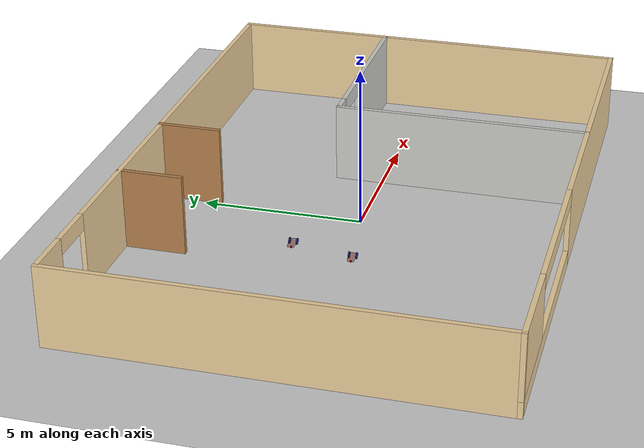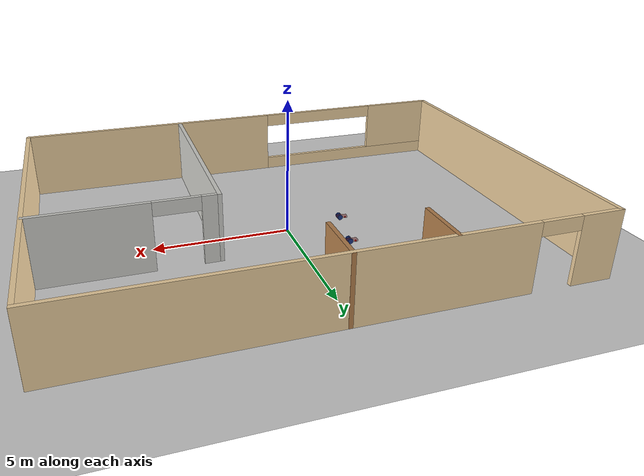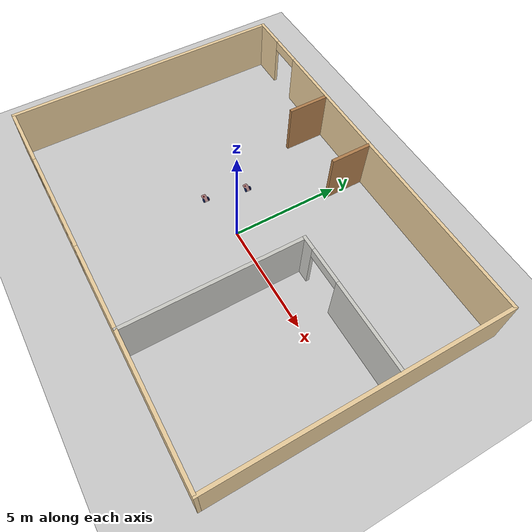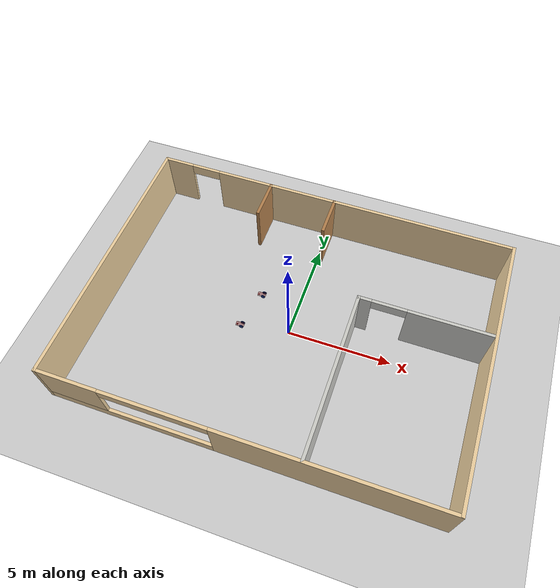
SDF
<sdf version="1.6">
 <world name="default">
  <plugin name="hello" filename="libhello.so"/>
  <light name="sun" type="directional">
   <pose>0 0 10 0 -0 0</pose>
   <diffuse>0.8 0.8 0.8 1</diffuse>
   <specular>0.2 0.2 0.2 1</specular>
   <attenuation>
    <range>1000</range>
    <constant>0.9</constant>
    <linear>0.01</linear>
    <quadratic>0.001</quadratic>
   </attenuation>
   <direction>-0.5 0.1 -0.9</direction>
  </light>
  <model name="ground_plane">
   <static>1</static>
   <link name="link">
    <collision name="collision">
     <geometry><plane><normal>0 0 1</normal><size>100 100</size></plane></geometry>
     <surface>
      <contact><collide_bitmask>65535</collide_bitmask></contact>
      <friction><ode><mu>100</mu><mu2>50</mu2></ode></friction>
     </surface>
    </collision>
    <visual name="visual">
     <cast_shadows>0</cast_shadows>
     <geometry><plane><normal>0 0 1</normal><size>100 100</size></plane></geometry>
     <material>
      <script><uri>file://media/materials/scripts/gazebo.material</uri><name>Gazebo/Grey</name></script>
     </material>
    </visual>
   </link>
  </model>
  <gravity>0 0 -9.8</gravity>
  <magnetic_field>6e-06 2.3e-05 -4.2e-05</magnetic_field>
  <atmosphere type="adiabatic"/>
  <physics name="default_physics" default="0" type="ode">
   <max_step_size>0.001</max_step_size>
   <real_time_factor>1</real_time_factor>
   <real_time_update_rate>1000</real_time_update_rate>
  </physics>
  <scene><ambient>0.4 0.4 0.4 1</ambient><background>0.7 0.7 0.7 1</background><shadows>1</shadows></scene>
  <audio><device>default</device></audio>
  <spherical_coordinates>
   <surface_model>EARTH_WGS84</surface_model>
   <latitude_deg>0</latitude_deg>
   <longitude_deg>0</longitude_deg>
   <elevation>0</elevation>
   <heading_deg>0</heading_deg>
  </spherical_coordinates>
  <model name="myapartment">
   <pose>0.04372 -0.00253 0 0 -0 0</pose>
   <link name="Wall_13">
    <collision name="Wall_13_Collision">
     <geometry><box><size>8 0.15 2.5</size></box></geometry>
     <pose>0 0 1.25 0 -0 0</pose>
    </collision>
    <visual name="Wall_13_Visual">
     <pose>0 0 1.25 0 -0 0</pose>
     <geometry><box><size>8 0.15 2.5</size></box></geometry>
     <material>
      <script><uri>file://media/materials/scripts/gazebo.material</uri><name>Gazebo/CeilingTiled</name></script>
      <ambient>0 0.666667 1 1</ambient>
     </material>
     <meta><layer>0</layer></meta>
    </visual>
    <pose>2.77622 -2.48679 0 0 -0 1.5708</pose>
   </link>
   <link name="Wall_14">
    <pose>5.82622 1.43821 0 0 -0 0</pose>
    <visual name="Wall_14_Visual_0">
     <pose>-2.78661 0 1.25 0 -0 0</pose>
     <geometry><box><size>0.676771 0.15 2.5</size></box></geometry>
     <material>
      <script><uri>file://media/materials/scripts/gazebo.material</uri><name>Gazebo/CeilingTiled</name></script>
      <ambient>0 0.666667 1 1</ambient>
     </material>
     <meta><layer>0</layer></meta>
    </visual>
    <collision name="Wall_14_Collision_0">
     <geometry><box><size>0.676771 0.15 2.5</size></box></geometry>
     <pose>-2.78661 0 1.25 0 -0 0</pose>
    </collision>
    <visual name="Wall_14_Visual_1">
     <pose>1.14693 0 1.25 0 -0 0</pose>
     <geometry><box><size>3.95614 0.15 2.5</size></box></geometry>
     <material>
      <script><uri>file://media/materials/scripts/gazebo.material</uri><name>Gazebo/CeilingTiled</name></script>
      <ambient>0 0.666667 1 1</ambient>
     </material>
     <meta><layer>0</layer></meta>
    </visual>
    <collision name="Wall_14_Collision_1">
     <geometry><box><size>3.95614 0.15 2.5</size></box></geometry>
     <pose>1.14693 0 1.25 0 -0 0</pose>
    </collision>
    <visual name="Wall_14_Visual_2">
     <pose>-1.63968 0 2.25 0 -0 0</pose>
     <geometry><box><size>1.61709 0.15 0.5</size></box></geometry>
     <material>
      <script><uri>file://media/materials/scripts/gazebo.material</uri><name>Gazebo/CeilingTiled</name></script>
      <ambient>0 0.666667 1 1</ambient>
     </material>
     <meta><layer>0</layer></meta>
    </visual>
    <collision name="Wall_14_Collision_2">
     <geometry><box><size>1.61709 0.15 0.5</size></box></geometry>
     <pose>-1.63968 0 2.25 0 -0 0</pose>
    </collision>
   </link>
   <link name="Wall_2">
    <pose>0 6.42373 0 0 -0 0</pose>
    <visual name="Wall_2_Visual_0">
     <pose>-8.23049 0 1.25 0 -0 0</pose>
     <geometry><box><size>1.53902 0.15 2.5</size></box></geometry>
     <material>
      <script><uri>file://media/materials/scripts/gazebo.material</uri><name>Gazebo/Grey</name></script>
      <ambient>0.921569 0.807843 0.615686 1</ambient>
     </material>
     <meta><layer>0</layer></meta>
    </visual>
    <collision name="Wall_2_Collision_0">
     <geometry><box><size>1.53902 0.15 2.5</size></box></geometry>
     <pose>-8.23049 0 1.25 0 -0 0</pose>
    </collision>
    <visual name="Wall_2_Visual_1">
     <pose>1.49935 0 1.25 0 -0 0</pose>
     <geometry><box><size>15.0013 0.15 2.5</size></box></geometry>
     <material>
      <script><uri>file://media/materials/scripts/gazebo.material</uri><name>Gazebo/Grey</name></script>
      <ambient>0.921569 0.807843 0.615686 1</ambient>
     </material>
     <meta><layer>0</layer></meta>
    </visual>
    <collision name="Wall_2_Collision_1">
     <geometry><box><size>15.0013 0.15 2.5</size></box></geometry>
     <pose>1.49935 0 1.25 0 -0 0</pose>
    </collision>
    <visual name="Wall_2_Visual_2">
     <pose>-6.73114 0 2.25 0 -0 0</pose>
     <geometry><box><size>1.45968 0.15 0.5</size></box></geometry>
     <material>
      <script><uri>file://media/materials/scripts/gazebo.material</uri><name>Gazebo/Grey</name></script>
      <ambient>0.921569 0.807843 0.615686 1</ambient>
     </material>
     <meta><layer>0</layer></meta>
    </visual>
    <collision name="Wall_2_Collision_2">
     <geometry><box><size>1.45968 0.15 0.5</size></box></geometry>
     <pose>-6.73114 0 2.25 0 -0 0</pose>
    </collision>
   </link>
   <link name="Wall_20">
    <collision name="Wall_20_Collision">
     <geometry><box><size>2 0.15 2.5</size></box></geometry>
     <pose>0 0 1.25 0 -0 0</pose>
    </collision>
    <visual name="Wall_20_Visual">
     <pose>0 0 1.25 0 -0 0</pose>
     <geometry><box><size>2 0.15 2.5</size></box></geometry>
     <material>
      <script><uri>file://media/materials/scripts/gazebo.material</uri><name>Gazebo/Wood</name></script>
      <ambient>0 0.666667 1 1</ambient>
     </material>
     <meta><layer>0</layer></meta>
    </visual>
    <pose>0.133709 5.50127 0 0 -0 -1.5708</pose>
   </link>
   <link name="Wall_22">
    <collision name="Wall_22_Collision">
     <geometry><box><size>2 0.15 2.5</size></box></geometry>
     <pose>0 0 1.25 0 -0 0</pose>
    </collision>
    <visual name="Wall_22_Visual">
     <pose>0 0 1.25 0 -0 0</pose>
     <geometry><box><size>2 0.15 2.5</size></box></geometry>
     <material>
      <script><uri>file://media/materials/scripts/gazebo.material</uri><name>Gazebo/Wood</name></script>
      <ambient>0 0.666667 1 1</ambient>
     </material>
     <meta><layer>0</layer></meta>
    </visual>
    <pose>-3.1894 5.49654 0 0 -0 -1.5708</pose>
   </link>
   <link name="Wall_6">
    <collision name="Wall_6_Collision">
     <geometry><box><size>13 0.15 2.5</size></box></geometry>
     <pose>0 0 1.25 0 -0 0</pose>
    </collision>
    <visual name="Wall_6_Visual">
     <pose>0 0 1.25 0 -0 0</pose>
     <geometry><box><size>13 0.15 2.5</size></box></geometry>
     <material>
      <script><uri>file://media/materials/scripts/gazebo.material</uri><name>Gazebo/Grey</name></script>
      <ambient>0.921569 0.807843 0.615686 1</ambient>
     </material>
     <meta><layer>0</layer></meta>
    </visual>
    <pose>8.925 -0.001273 0 0 -0 -1.5708</pose>
   </link>
   <link name="Wall_7">
    <pose>0 -6.42627 0 0 -0 3.14159</pose>
    <visual name="Wall_7_Visual_0">
     <pose>-3.92872 0 1.25 0 -0 0</pose>
     <geometry><box><size>10.1426 0.15 2.5</size></box></geometry>
     <material>
      <script><uri>file://media/materials/scripts/gazebo.material</uri><name>Gazebo/Grey</name></script>
      <ambient>0.921569 0.807843 0.615686 1</ambient>
     </material>
     <meta><layer>0</layer></meta>
    </visual>
    <collision name="Wall_7_Collision_0">
     <geometry><box><size>10.1426 0.15 2.5</size></box></geometry>
     <pose>-3.92872 0 1.25 0 -0 0</pose>
    </collision>
    <visual name="Wall_7_Visual_1">
     <pose>5.07128 0 0.25 0 -0 0</pose>
     <geometry><box><size>7.85743 0.15 0.5</size></box></geometry>
     <material>
      <script><uri>file://media/materials/scripts/gazebo.material</uri><name>Gazebo/Grey</name></script>
      <ambient>0.921569 0.807843 0.615686 1</ambient>
     </material>
     <meta><layer>0</layer></meta>
    </visual>
    <collision name="Wall_7_Collision_1">
     <geometry><box><size>7.85743 0.15 0.5</size></box></geometry>
     <pose>5.07128 0 0.25 0 -0 0</pose>
    </collision>
    <visual name="Wall_7_Visual_2">
     <pose>7.51928 0 1.5 0 -0 0</pose>
     <geometry><box><size>2.96143 0.15 2</size></box></geometry>
     <material>
      <script><uri>file://media/materials/scripts/gazebo.material</uri><name>Gazebo/Grey</name></script>
      <ambient>0.921569 0.807843 0.615686 1</ambient>
     </material>
     <meta><layer>0</layer></meta>
    </visual>
    <collision name="Wall_7_Collision_2">
     <geometry><box><size>2.96143 0.15 2</size></box></geometry>
     <pose>7.51928 0 1.5 0 -0 0</pose>
    </collision>
    <visual name="Wall_7_Visual_3">
     <pose>3.59057 0 2.2555 0 -0 0</pose>
     <geometry><box><size>4.896 0.15 0.489</size></box></geometry>
     <material>
      <script><uri>file://media/materials/scripts/gazebo.material</uri><name>Gazebo/Grey</name></script>
      <ambient>0.921569 0.807843 0.615686 1</ambient>
     </material>
     <meta><layer>0</layer></meta>
    </visual>
    <collision name="Wall_7_Collision_3">
     <geometry><box><size>4.896 0.15 0.489</size></box></geometry>
     <pose>3.59057 0 2.2555 0 -0 0</pose>
    </collision>
   </link>
   <link name="Wall_8">
    <collision name="Wall_8_Collision">
     <geometry><box><size>13 0.15 2.5</size></box></geometry>
     <pose>0 0 1.25 0 -0 0</pose>
    </collision>
    <visual name="Wall_8_Visual">
     <pose>0 0 1.25 0 -0 0</pose>
     <geometry><box><size>13 0.15 2.5</size></box></geometry>
     <material>
      <script><uri>file://media/materials/scripts/gazebo.material</uri><name>Gazebo/Grey</name></script>
      <ambient>0.921569 0.807843 0.615686 1</ambient>
     </material>
     <meta><layer>0</layer></meta>
    </visual>
    <pose>-8.925 -0.001273 0 0 -0 1.5708</pose>
   </link>
   <static>1</static>
  </model>
  <model name="r2d2">
   <link name="chassis">
    <pose>0 -0 0.1 0 -0 0</pose>
    <inertial>
     <inertia><ixx>0</ixx><ixy>0</ixy><ixz>0</ixz><iyy>0</iyy><iyz>0</iyz><izz>0</izz></inertia>
     <mass>0.641471</mass>
    </inertial>
    <visual name="visual">
     <geometry><box><size>0.4 0.2 0.066426</size></box></geometry>
     <material>
      <ambient>0.4 0 0 0.4</ambient>
      <diffuse>0.4 0 0 0.4</diffuse>
      <specular>0.4 0 0 0.4</specular>
      <emissive>0.4 0 0 0.4</emissive>
      <script><name>ModelPreview_1::chassis::visual_MATERIAL_</name><uri>__default__</uri></script>
      <shader type="vertex"><normal_map>__default__</normal_map></shader>
     </material>
    </visual>
    <visual name="caster_visual">
     <pose>-0.15 0 -0.05 0 -0 0</pose>
     <geometry><sphere><radius>0.0332131</radius></sphere></geometry>
     <material>
      <shader type="vertex"><normal_map>__default__</normal_map></shader>
      <ambient>0.8 0 0 0</ambient>
      <diffuse>0.8 0 0 0</diffuse>
      <specular>0.8 0 0 0</specular>
      <emissive>0.8 0 0 0</emissive>
      <script><name>ModelPreview_4::chassis::caster_visual_MATERIAL_</name><uri>__default__</uri></script>
     </material>
    </visual>
    <collision name="collision">
     <geometry><box><size>0.4 0.2 0.066426</size></box></geometry>
     <surface>
      <friction>
       <ode><mu>1</mu><mu2>1</mu2><fdir1>0 0 0</fdir1><slip1>0</slip1><slip2>0</slip2></ode>
       <torsional>
        <coefficient>1</coefficient>
        <patch_radius>0</patch_radius>
        <surface_radius>0</surface_radius>
        <use_patch_radius>1</use_patch_radius>
        <ode><slip>0</slip></ode>
       </torsional>
      </friction>
      <bounce><restitution_coefficient>0</restitution_coefficient><threshold>1e+06</threshold></bounce>
      <contact>
       <collide_without_contact>0</collide_without_contact>
       <collide_without_contact_bitmask>1</collide_without_contact_bitmask>
       <collide_bitmask>1</collide_bitmask>
       <ode>
        <soft_cfm>0</soft_cfm>
        <soft_erp>0.2</soft_erp>
        <kp>1e+13</kp>
        <kd>1</kd>
        <max_vel>0.01</max_vel>
        <min_depth>0</min_depth>
       </ode>
       <bullet>
        <split_impulse>1</split_impulse>
        <split_impulse_penetration_threshold>-0.01</split_impulse_penetration_threshold>
        <soft_cfm>0</soft_cfm>
        <soft_erp>0.2</soft_erp>
        <kp>1e+13</kp>
        <kd>1</kd>
       </bullet>
      </contact>
     </surface>
    </collision>
    <collision name="caster_collision">
     <pose>-0.15 0 -0.05 0 -0 0</pose>
     <geometry><sphere><radius>0.033213</radius></sphere></geometry>
     <surface>
      <friction>
       <ode><mu>0</mu><mu2>0</mu2><fdir1>0 0 0</fdir1><slip1>1</slip1><slip2>1</slip2></ode>
       <torsional>
        <coefficient>1</coefficient>
        <patch_radius>0</patch_radius>
        <surface_radius>0</surface_radius>
        <use_patch_radius>1</use_patch_radius>
        <ode><slip>0</slip></ode>
       </torsional>
      </friction>
      <bounce><restitution_coefficient>0</restitution_coefficient><threshold>1e+06</threshold></bounce>
      <contact>
       <collide_without_contact>0</collide_without_contact>
       <collide_without_contact_bitmask>1</collide_without_contact_bitmask>
       <collide_bitmask>1</collide_bitmask>
       <ode>
        <soft_cfm>0</soft_cfm>
        <soft_erp>0.2</soft_erp>
        <kp>1e+13</kp>
        <kd>1</kd>
        <max_vel>0.01</max_vel>
        <min_depth>0</min_depth>
       </ode>
       <bullet>
        <split_impulse>1</split_impulse>
        <split_impulse_penetration_threshold>-0.01</split_impulse_penetration_threshold>
        <soft_cfm>0</soft_cfm>
        <soft_erp>0.2</soft_erp>
        <kp>1e+13</kp>
        <kd>1</kd>
       </bullet>
      </contact>
     </surface>
    </collision>
   </link>
   <link name="left_wheel">
    <pose>0.1 0.115 0.1 -0.00333 1.5707 1.56736</pose>
    <inertial>
     <inertia><ixx>1</ixx><ixy>0</ixy><ixz>0</ixz><iyy>1</iyy><iyz>0</iyz><izz>1</izz></inertia>
     <mass>1</mass>
    </inertial>
    <visual name="visual_lw">
     <geometry><cylinder><radius>0.1</radius><length>0.03</length></cylinder></geometry>
     <material>
      <ambient>0.1 0.2 0.5 0</ambient>
      <diffuse>0.1 0.2 0.5 0</diffuse>
      <specular>0.1 0.2 0.5 0</specular>
      <emissive>0 0 0 1</emissive>
      <script><name>ModelPreview_1::left_wheel::visual_lw_MATERIAL_</name><uri>__default__</uri></script>
      <shader type="vertex"><normal_map>__default__</normal_map></shader>
     </material>
    </visual>
    <collision name="collision_lw">
     <geometry><cylinder><radius>0.1</radius><length>0.03</length></cylinder></geometry>
     <surface>
      <friction>
       <ode><mu>1</mu><mu2>1</mu2><fdir1>0 0 0</fdir1><slip1>0</slip1><slip2>0</slip2></ode>
       <torsional>
        <coefficient>1</coefficient>
        <patch_radius>0</patch_radius>
        <surface_radius>0</surface_radius>
        <use_patch_radius>1</use_patch_radius>
        <ode><slip>0</slip></ode>
       </torsional>
      </friction>
      <bounce><restitution_coefficient>0</restitution_coefficient><threshold>1e+06</threshold></bounce>
      <contact>
       <collide_without_contact>0</collide_without_contact>
       <collide_without_contact_bitmask>1</collide_without_contact_bitmask>
       <collide_bitmask>1</collide_bitmask>
       <ode>
        <soft_cfm>0</soft_cfm>
        <soft_erp>0.2</soft_erp>
        <kp>1e+13</kp>
        <kd>1</kd>
        <max_vel>0.01</max_vel>
        <min_depth>0</min_depth>
       </ode>
       <bullet>
        <split_impulse>1</split_impulse>
        <split_impulse_penetration_threshold>-0.01</split_impulse_penetration_threshold>
        <soft_cfm>0</soft_cfm>
        <soft_erp>0.2</soft_erp>
        <kp>1e+13</kp>
        <kd>1</kd>
       </bullet>
      </contact>
     </surface>
    </collision>
   </link>
   <link name="right_wheel">
    <pose>0.1 -0.115 0.1 -0.004565 1.5707 1.56612</pose>
    <inertial>
     <inertia><ixx>1</ixx><ixy>0</ixy><ixz>0</ixz><iyy>1</iyy><iyz>0</iyz><izz>1</izz></inertia>
     <mass>1</mass>
    </inertial>
    <visual name="visual_rw">
     <geometry><cylinder><radius>0.1</radius><length>0.03</length></cylinder></geometry>
     <material>
      <ambient>0.1 0.2 0.5 0</ambient>
      <diffuse>0.1 0.2 0.5 0</diffuse>
      <specular>0.1 0.2 0.5 0</specular>
      <emissive>0 0 0 1</emissive>
      <script><name>ModelPreview_1::right_wheel::visual_rw_MATERIAL_</name><uri>__default__</uri></script>
      <shader type="vertex"><normal_map>__default__</normal_map></shader>
     </material>
    </visual>
    <collision name="collision_rw">
     <geometry><cylinder><radius>0.1</radius><length>0.03</length></cylinder></geometry>
     <surface>
      <friction>
       <ode><mu>1</mu><mu2>1</mu2><fdir1>0 0 0</fdir1><slip1>0</slip1><slip2>0</slip2></ode>
       <torsional>
        <coefficient>1</coefficient>
        <patch_radius>0</patch_radius>
        <surface_radius>0</surface_radius>
        <use_patch_radius>1</use_patch_radius>
        <ode><slip>0</slip></ode>
       </torsional>
      </friction>
      <bounce><restitution_coefficient>0</restitution_coefficient><threshold>1e+06</threshold></bounce>
      <contact>
       <collide_without_contact>0</collide_without_contact>
       <collide_without_contact_bitmask>1</collide_without_contact_bitmask>
       <collide_bitmask>1</collide_bitmask>
       <ode>
        <soft_cfm>0</soft_cfm>
        <soft_erp>0.2</soft_erp>
        <kp>1e+13</kp>
        <kd>1</kd>
        <max_vel>0.01</max_vel>
        <min_depth>0</min_depth>
       </ode>
       <bullet>
        <split_impulse>1</split_impulse>
        <split_impulse_penetration_threshold>-0.01</split_impulse_penetration_threshold>
        <soft_cfm>0</soft_cfm>
        <soft_erp>0.2</soft_erp>
        <kp>1e+13</kp>
        <kd>1</kd>
       </bullet>
      </contact>
     </surface>
    </collision>
   </link>
   <joint name="lw_hinge" type="revolute">
    <parent>chassis</parent>
    <child>left_wheel</child>
    <pose>0 0 -0.03 0 -0 0</pose>
    <axis>
     <xyz>0 1 0</xyz>
     <use_parent_model_frame>0</use_parent_model_frame>
     <limit><lower>-1e+16</lower><upper>1e+16</upper><effort>-1</effort><velocity>-1</velocity></limit>
     <dynamics>
      <spring_reference>0</spring_reference>
      <spring_stiffness>0</spring_stiffness>
      <damping>0</damping>
      <friction>0</friction>
     </dynamics>
    </axis>
    <physics>
     <ode><limit><cfm>0</cfm><erp>0.2</erp></limit><suspension><cfm>0</cfm><erp>0.2</erp></suspension></ode>
    </physics>
   </joint>
   <joint name="rw_hinge" type="revolute">
    <parent>chassis</parent>
    <child>right_wheel</child>
    <pose>0 0 0.03 0 -0 0</pose>
    <axis>
     <xyz>0 1 0</xyz>
     <use_parent_model_frame>0</use_parent_model_frame>
     <limit><lower>-1e+16</lower><upper>1e+16</upper><effort>-1</effort><velocity>-1</velocity></limit>
     <dynamics>
      <spring_reference>0</spring_reference>
      <spring_stiffness>0</spring_stiffness>
      <damping>0</damping>
      <friction>0</friction>
     </dynamics>
    </axis>
    <physics>
     <ode><limit><cfm>0</cfm><erp>0.2</erp></limit><suspension><cfm>0</cfm><erp>0.2</erp></suspension></ode>
    </physics>
   </joint>
   <static>0</static>
   <pose>-1.92281 1.58388 -0.006531 3.5e-05 -0.067647 0.000421</pose>
  </model>
  <model name="r2d2_0">
   <link name="chassis">
    <pose>0 -0 0.1 0 -0 0</pose>
    <inertial>
     <inertia><ixx>0</ixx><ixy>0</ixy><ixz>0</ixz><iyy>0</iyy><iyz>0</iyz><izz>0</izz></inertia>
     <mass>0.641471</mass>
    </inertial>
    <visual name="visual">
     <geometry><box><size>0.4 0.2 0.066426</size></box></geometry>
     <material>
      <ambient>0.4 0 0 0.4</ambient>
      <diffuse>0.4 0 0 0.4</diffuse>
      <specular>0.4 0 0 0.4</specular>
      <emissive>0.4 0 0 0.4</emissive>
      <script><name>ModelPreview_1::chassis::visual_MATERIAL_</name><uri>__default__</uri></script>
      <shader type="vertex"><normal_map>__default__</normal_map></shader>
     </material>
    </visual>
    <visual name="caster_visual">
     <pose>-0.15 0 -0.05 0 -0 0</pose>
     <geometry><sphere><radius>0.0332131</radius></sphere></geometry>
     <material>
      <shader type="vertex"><normal_map>__default__</normal_map></shader>
      <ambient>0.8 0 0 0</ambient>
      <diffuse>0.8 0 0 0</diffuse>
      <specular>0.8 0 0 0</specular>
      <emissive>0.8 0 0 0</emissive>
      <script><name>ModelPreview_4::chassis::caster_visual_MATERIAL_</name><uri>__default__</uri></script>
     </material>
    </visual>
    <collision name="collision">
     <geometry><box><size>0.4 0.2 0.066426</size></box></geometry>
     <surface>
      <friction>
       <ode><mu>1</mu><mu2>1</mu2><fdir1>0 0 0</fdir1><slip1>0</slip1><slip2>0</slip2></ode>
       <torsional>
        <coefficient>1</coefficient>
        <patch_radius>0</patch_radius>
        <surface_radius>0</surface_radius>
        <use_patch_radius>1</use_patch_radius>
        <ode><slip>0</slip></ode>
       </torsional>
      </friction>
      <bounce><restitution_coefficient>0</restitution_coefficient><threshold>1e+06</threshold></bounce>
      <contact>
       <collide_without_contact>0</collide_without_contact>
       <collide_without_contact_bitmask>1</collide_without_contact_bitmask>
       <collide_bitmask>1</collide_bitmask>
       <ode>
        <soft_cfm>0</soft_cfm>
        <soft_erp>0.2</soft_erp>
        <kp>1e+13</kp>
        <kd>1</kd>
        <max_vel>0.01</max_vel>
        <min_depth>0</min_depth>
       </ode>
       <bullet>
        <split_impulse>1</split_impulse>
        <split_impulse_penetration_threshold>-0.01</split_impulse_penetration_threshold>
        <soft_cfm>0</soft_cfm>
        <soft_erp>0.2</soft_erp>
        <kp>1e+13</kp>
        <kd>1</kd>
       </bullet>
      </contact>
     </surface>
    </collision>
    <collision name="caster_collision">
     <pose>-0.15 0 -0.05 0 -0 0</pose>
     <geometry><sphere><radius>0.033213</radius></sphere></geometry>
     <surface>
      <friction>
       <ode><mu>0</mu><mu2>0</mu2><fdir1>0 0 0</fdir1><slip1>1</slip1><slip2>1</slip2></ode>
       <torsional>
        <coefficient>1</coefficient>
        <patch_radius>0</patch_radius>
        <surface_radius>0</surface_radius>
        <use_patch_radius>1</use_patch_radius>
        <ode><slip>0</slip></ode>
       </torsional>
      </friction>
      <bounce><restitution_coefficient>0</restitution_coefficient><threshold>1e+06</threshold></bounce>
      <contact>
       <collide_without_contact>0</collide_without_contact>
       <collide_without_contact_bitmask>1</collide_without_contact_bitmask>
       <collide_bitmask>1</collide_bitmask>
       <ode>
        <soft_cfm>0</soft_cfm>
        <soft_erp>0.2</soft_erp>
        <kp>1e+13</kp>
        <kd>1</kd>
        <max_vel>0.01</max_vel>
        <min_depth>0</min_depth>
       </ode>
       <bullet>
        <split_impulse>1</split_impulse>
        <split_impulse_penetration_threshold>-0.01</split_impulse_penetration_threshold>
        <soft_cfm>0</soft_cfm>
        <soft_erp>0.2</soft_erp>
        <kp>1e+13</kp>
        <kd>1</kd>
       </bullet>
      </contact>
     </surface>
    </collision>
   </link>
   <link name="left_wheel">
    <pose>0.1 0.115 0.1 -0.00333 1.5707 1.56736</pose>
    <inertial>
     <inertia><ixx>1</ixx><ixy>0</ixy><ixz>0</ixz><iyy>1</iyy><iyz>0</iyz><izz>1</izz></inertia>
     <mass>1</mass>
    </inertial>
    <visual name="visual_lw">
     <geometry><cylinder><radius>0.1</radius><length>0.03</length></cylinder></geometry>
     <material>
      <ambient>0.1 0.2 0.5 0</ambient>
      <diffuse>0.1 0.2 0.5 0</diffuse>
      <specular>0.1 0.2 0.5 0</specular>
      <emissive>0 0 0 1</emissive>
      <script><name>ModelPreview_1::left_wheel::visual_lw_MATERIAL_</name><uri>__default__</uri></script>
      <shader type="vertex"><normal_map>__default__</normal_map></shader>
     </material>
    </visual>
    <collision name="collision_lw">
     <geometry><cylinder><radius>0.1</radius><length>0.03</length></cylinder></geometry>
     <surface>
      <friction>
       <ode><mu>1</mu><mu2>1</mu2><fdir1>0 0 0</fdir1><slip1>0</slip1><slip2>0</slip2></ode>
       <torsional>
        <coefficient>1</coefficient>
        <patch_radius>0</patch_radius>
        <surface_radius>0</surface_radius>
        <use_patch_radius>1</use_patch_radius>
        <ode><slip>0</slip></ode>
       </torsional>
      </friction>
      <bounce><restitution_coefficient>0</restitution_coefficient><threshold>1e+06</threshold></bounce>
      <contact>
       <collide_without_contact>0</collide_without_contact>
       <collide_without_contact_bitmask>1</collide_without_contact_bitmask>
       <collide_bitmask>1</collide_bitmask>
       <ode>
        <soft_cfm>0</soft_cfm>
        <soft_erp>0.2</soft_erp>
        <kp>1e+13</kp>
        <kd>1</kd>
        <max_vel>0.01</max_vel>
        <min_depth>0</min_depth>
       </ode>
       <bullet>
        <split_impulse>1</split_impulse>
        <split_impulse_penetration_threshold>-0.01</split_impulse_penetration_threshold>
        <soft_cfm>0</soft_cfm>
        <soft_erp>0.2</soft_erp>
        <kp>1e+13</kp>
        <kd>1</kd>
       </bullet>
      </contact>
     </surface>
    </collision>
   </link>
   <link name="right_wheel">
    <pose>0.1 -0.115 0.1 -0.004565 1.5707 1.56612</pose>
    <inertial>
     <inertia><ixx>1</ixx><ixy>0</ixy><ixz>0</ixz><iyy>1</iyy><iyz>0</iyz><izz>1</izz></inertia>
     <mass>1</mass>
    </inertial>
    <visual name="visual_rw">
     <geometry><cylinder><radius>0.1</radius><length>0.03</length></cylinder></geometry>
     <material>
      <ambient>0.1 0.2 0.5 0</ambient>
      <diffuse>0.1 0.2 0.5 0</diffuse>
      <specular>0.1 0.2 0.5 0</specular>
      <emissive>0 0 0 1</emissive>
      <script><name>ModelPreview_1::right_wheel::visual_rw_MATERIAL_</name><uri>__default__</uri></script>
      <shader type="vertex"><normal_map>__default__</normal_map></shader>
     </material>
    </visual>
    <collision name="collision_rw">
     <geometry><cylinder><radius>0.1</radius><length>0.03</length></cylinder></geometry>
     <surface>
      <friction>
       <ode><mu>1</mu><mu2>1</mu2><fdir1>0 0 0</fdir1><slip1>0</slip1><slip2>0</slip2></ode>
       <torsional>
        <coefficient>1</coefficient>
        <patch_radius>0</patch_radius>
        <surface_radius>0</surface_radius>
        <use_patch_radius>1</use_patch_radius>
        <ode><slip>0</slip></ode>
       </torsional>
      </friction>
      <bounce><restitution_coefficient>0</restitution_coefficient><threshold>1e+06</threshold></bounce>
      <contact>
       <collide_without_contact>0</collide_without_contact>
       <collide_without_contact_bitmask>1</collide_without_contact_bitmask>
       <collide_bitmask>1</collide_bitmask>
       <ode>
        <soft_cfm>0</soft_cfm>
        <soft_erp>0.2</soft_erp>
        <kp>1e+13</kp>
        <kd>1</kd>
        <max_vel>0.01</max_vel>
        <min_depth>0</min_depth>
       </ode>
       <bullet>
        <split_impulse>1</split_impulse>
        <split_impulse_penetration_threshold>-0.01</split_impulse_penetration_threshold>
        <soft_cfm>0</soft_cfm>
        <soft_erp>0.2</soft_erp>
        <kp>1e+13</kp>
        <kd>1</kd>
       </bullet>
      </contact>
     </surface>
    </collision>
   </link>
   <joint name="lw_hinge" type="revolute">
    <parent>chassis</parent>
    <child>left_wheel</child>
    <pose>0 0 -0.03 0 -0 0</pose>
    <axis>
     <xyz>0 1 0</xyz>
     <use_parent_model_frame>0</use_parent_model_frame>
     <limit><lower>-1e+16</lower><upper>1e+16</upper><effort>-1</effort><velocity>-1</velocity></limit>
     <dynamics>
      <spring_reference>0</spring_reference>
      <spring_stiffness>0</spring_stiffness>
      <damping>0</damping>
      <friction>0</friction>
     </dynamics>
    </axis>
    <physics>
     <ode><limit><cfm>0</cfm><erp>0.2</erp></limit><suspension><cfm>0</cfm><erp>0.2</erp></suspension></ode>
    </physics>
   </joint>
   <joint name="rw_hinge" type="revolute">
    <parent>chassis</parent>
    <child>right_wheel</child>
    <pose>0 0 0.03 0 -0 0</pose>
    <axis>
     <xyz>0 1 0</xyz>
     <use_parent_model_frame>0</use_parent_model_frame>
     <limit><lower>-1e+16</lower><upper>1e+16</upper><effort>-1</effort><velocity>-1</velocity></limit>
     <dynamics>
      <spring_reference>0</spring_reference>
      <spring_stiffness>0</spring_stiffness>
      <damping>0</damping>
      <friction>0</friction>
     </dynamics>
    </axis>
    <physics>
     <ode><limit><cfm>0</cfm><erp>0.2</erp></limit><suspension><cfm>0</cfm><erp>0.2</erp></suspension></ode>
    </physics>
   </joint>
   <static>0</static>
   <pose>-2.30846 -0.353024 -0.006531 3.8e-05 -0.06766 0.001571</pose>
  </model>
 </world>
</sdf>
